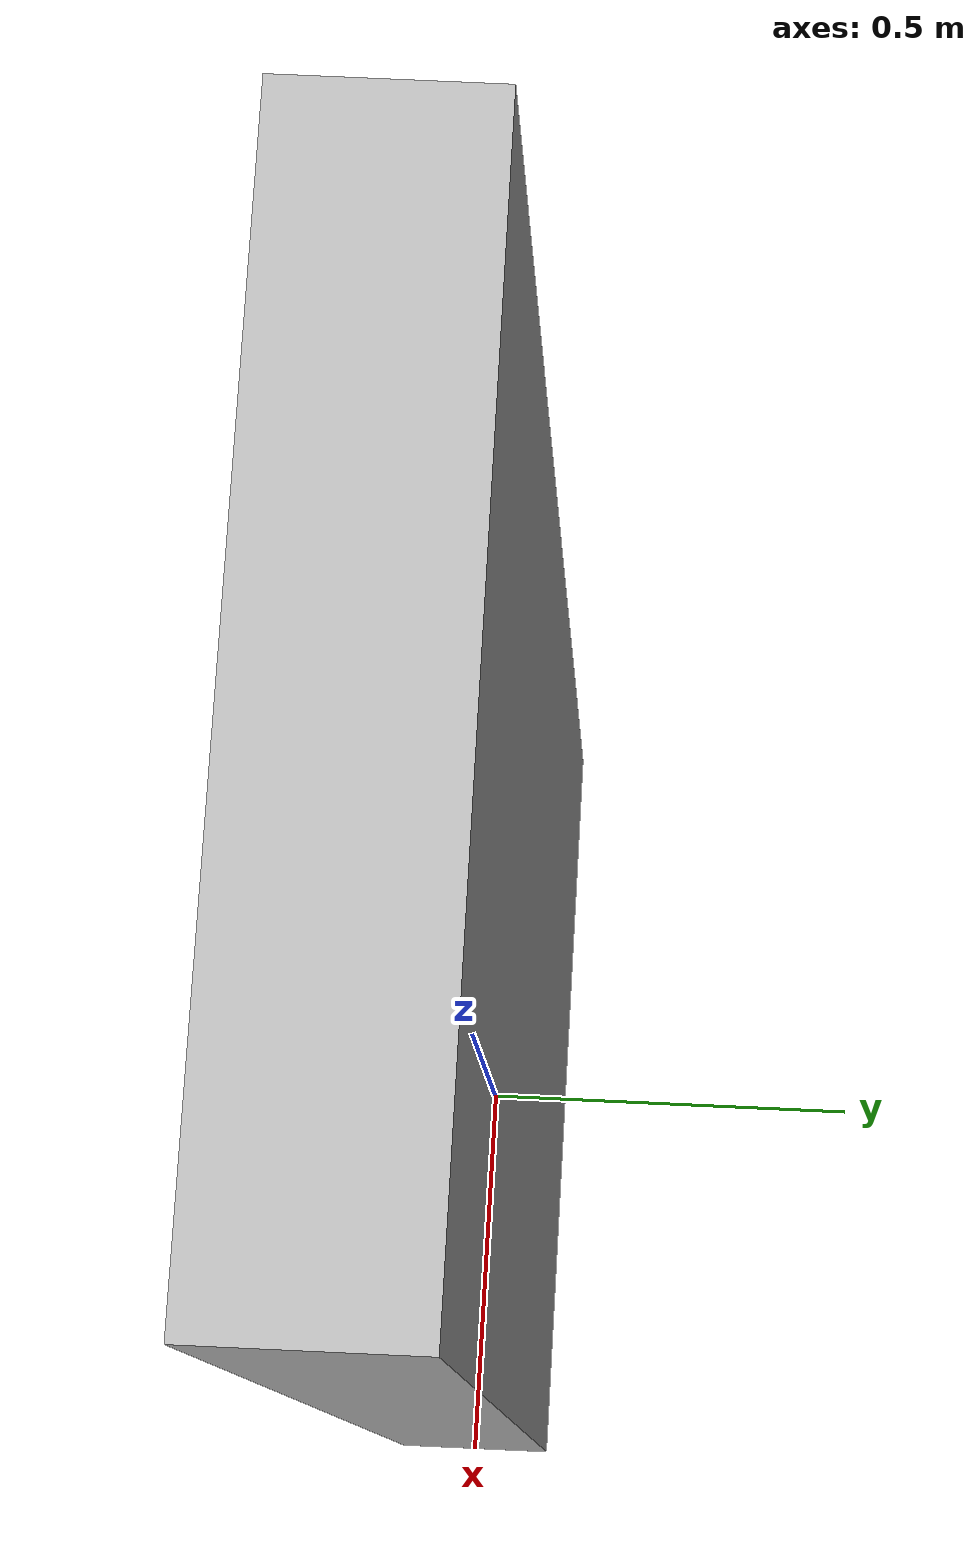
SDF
<?xml version="1.0"?>
<sdf version="1.10">
  <model name="wall_1m">
    <static>true</static>
    <link name="wall_link">
      <visual name="wall_visual">
        <geometry>
          <mesh>
            <uri>model://wall_1m/meshes/wall_1m.dae</uri>
          </mesh>
        </geometry>
      </visual>

      <collision name="wall_collision">
        <pose>0 0 1 0 0 0</pose>
        <geometry>
          <box>
            <size>1 0.2 2</size>
          </box>
        </geometry>
      </collision>
    </link>
  </model>
</sdf>
